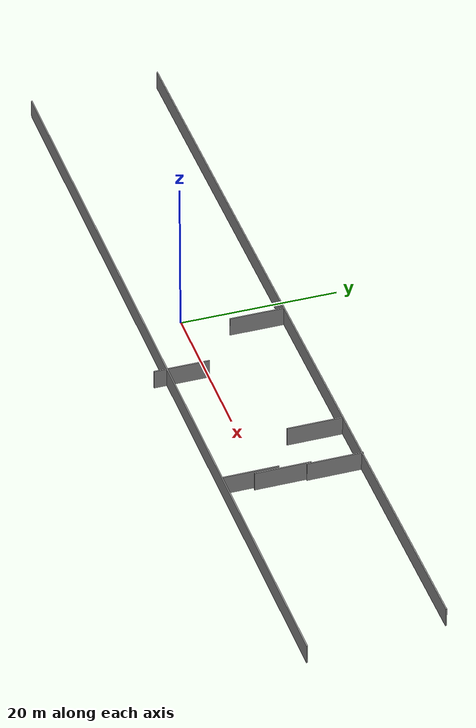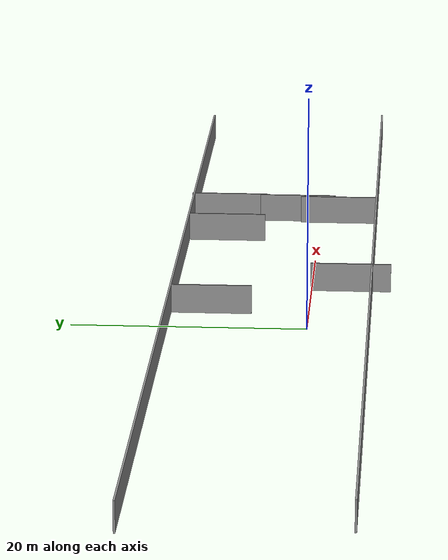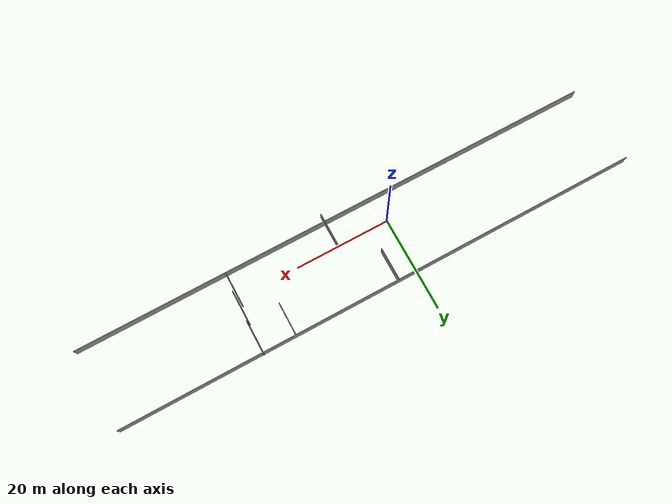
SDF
<sdf version="1.6">
 <world name="default">
  <light name="sun" type="directional">
   <cast_shadows>0</cast_shadows>
   <pose>0 0 10 0 -0 0</pose>
   <diffuse>0.8 0.8 0.8 1</diffuse>
   <specular>0.1 0.1 0.1 1</specular>
   <attenuation>
    <range>1000</range>
    <constant>0.9</constant>
    <linear>0.01</linear>
    <quadratic>0.001</quadratic>
   </attenuation>
   <direction>-0.5 0.5 -1</direction>
  </light>
  <gravity>0 0 -9.8</gravity>
  <magnetic_field>6e-06 2.3e-05 -4.2e-05</magnetic_field>
  <atmosphere type="adiabatic"/>
  <physics name="default_physics" default="0" type="ode">
   <max_step_size>0.001</max_step_size>
   <real_time_factor>1</real_time_factor>
   <real_time_update_rate>1000</real_time_update_rate>
  </physics>
  <scene><ambient>0.4 0.4 0.4 1</ambient><background>0.7 0.7 0.7 1</background><shadows>1</shadows></scene>
  <spherical_coordinates>
   <surface_model>EARTH_WGS84</surface_model>
   <latitude_deg>0</latitude_deg>
   <longitude_deg>0</longitude_deg>
   <elevation>0</elevation>
   <heading_deg>0</heading_deg>
  </spherical_coordinates>
  <model name="longwall">
   <pose>7.49303 11.865 0 0 -0 0</pose>
   <link name="Wall_0">
    <collision name="Wall_0_Collision">
     <geometry><box><size>110.75 0.15 2.5</size></box></geometry>
     <pose>0 0 1.25 0 -0 0</pose>
    </collision>
    <visual name="Wall_0_Visual">
     <pose>0 0 1.25 0 -0 0</pose>
     <geometry><box><size>110.75 0.15 2.5</size></box></geometry>
     <material>
      <script><uri>file://media/materials/scripts/gazebo.material</uri><name>Gazebo/Grey</name></script>
      <ambient>1 1 1 1</ambient>
     </material>
     <meta><layer>0</layer></meta>
    </visual>
    <pose>2e-06 0 0 0 -0 0</pose>
   </link>
   <static>1</static>
  </model>
  <model name="longwall_clone">
   <pose>8.67715 -5.22871 0 0 -0 0</pose>
   <link name="Wall_0">
    <collision name="Wall_0_Collision">
     <geometry><box><size>110.75 0.15 2.5</size></box></geometry>
     <pose>0 0 1.25 0 -0 0</pose>
    </collision>
    <visual name="Wall_0_Visual">
     <pose>0 0 1.25 0 -0 0</pose>
     <geometry><box><size>110.75 0.15 2.5</size></box></geometry>
     <material>
      <script><uri>file://media/materials/scripts/gazebo.material</uri><name>Gazebo/Grey</name></script>
      <ambient>1 1 1 1</ambient>
     </material>
     <meta><layer>0</layer></meta>
    </visual>
    <pose>2e-06 0 0 0 -0 0</pose>
   </link>
   <static>1</static>
  </model>
  <model name="wallyese">
   <pose>11.0843 -3.37863 0 0 -0 0</pose>
   <link name="Wall_2">
    <collision name="Wall_2_Collision">
     <geometry><box><size>7 0.15 2.5</size></box></geometry>
     <pose>0 0 1.25 0 -0 0</pose>
    </collision>
    <visual name="Wall_2_Visual">
     <pose>0 0 1.25 0 -0 0</pose>
     <geometry><box><size>7 0.15 2.5</size></box></geometry>
     <material>
      <script><uri>file://media/materials/scripts/gazebo.material</uri><name>Gazebo/Grey</name></script>
      <ambient>1 1 1 1</ambient>
     </material>
     <meta><layer>0</layer></meta>
    </visual>
    <pose>0 0 0 0 -0 -1.5708</pose>
   </link>
   <static>1</static>
  </model>
  <model name="wallyese_clone">
   <pose>33.2414 8.52134 0 0 -0 0</pose>
   <link name="Wall_2">
    <collision name="Wall_2_Collision">
     <geometry><box><size>7 0.15 2.5</size></box></geometry>
     <pose>0 0 1.25 0 -0 0</pose>
    </collision>
    <visual name="Wall_2_Visual">
     <pose>0 0 1.25 0 -0 0</pose>
     <geometry><box><size>7 0.15 2.5</size></box></geometry>
     <material>
      <script><uri>file://media/materials/scripts/gazebo.material</uri><name>Gazebo/Grey</name></script>
      <ambient>1 1 1 1</ambient>
     </material>
     <meta><layer>0</layer></meta>
    </visual>
    <pose>0 0 0 0 -0 -1.5708</pose>
   </link>
   <static>1</static>
  </model>
  <model name="wallyese_clone_0">
   <pose>33.0334 2.12027 0 0 -0 0</pose>
   <link name="Wall_2">
    <collision name="Wall_2_Collision">
     <geometry><box><size>7 0.15 2.5</size></box></geometry>
     <pose>0 0 1.25 0 -0 0</pose>
    </collision>
    <visual name="Wall_2_Visual">
     <pose>0 0 1.25 0 -0 0</pose>
     <geometry><box><size>7 0.15 2.5</size></box></geometry>
     <material>
      <script><uri>file://media/materials/scripts/gazebo.material</uri><name>Gazebo/Grey</name></script>
      <ambient>1 1 1 1</ambient>
     </material>
     <meta><layer>0</layer></meta>
    </visual>
    <pose>0 0 0 0 -0 -1.5708</pose>
   </link>
   <static>1</static>
  </model>
  <model name="wallyese_clone_1">
   <pose>32.6138 -1.69658 0 0 -0 0</pose>
   <link name="Wall_2">
    <collision name="Wall_2_Collision">
     <geometry><box><size>7 0.15 2.5</size></box></geometry>
     <pose>0 0 1.25 0 -0 0</pose>
    </collision>
    <visual name="Wall_2_Visual">
     <pose>0 0 1.25 0 -0 0</pose>
     <geometry><box><size>7 0.15 2.5</size></box></geometry>
     <material>
      <script><uri>file://media/materials/scripts/gazebo.material</uri><name>Gazebo/Grey</name></script>
      <ambient>1 1 1 1</ambient>
     </material>
     <meta><layer>0</layer></meta>
    </visual>
    <pose>0 0 0 0 -0 -1.5708</pose>
   </link>
   <static>1</static>
  </model>
  <model name="wallyese_clone_2">
   <pose>26.285 8.36121 0 0 -0 0</pose>
   <link name="Wall_2">
    <collision name="Wall_2_Collision">
     <geometry><box><size>7 0.15 2.5</size></box></geometry>
     <pose>0 0 1.25 0 -0 0</pose>
    </collision>
    <visual name="Wall_2_Visual">
     <pose>0 0 1.25 0 -0 0</pose>
     <geometry><box><size>7 0.15 2.5</size></box></geometry>
     <material>
      <script><uri>file://media/materials/scripts/gazebo.material</uri><name>Gazebo/Grey</name></script>
      <ambient>1 1 1 1</ambient>
     </material>
     <meta><layer>0</layer></meta>
    </visual>
    <pose>0 0 0 0 -0 -1.5708</pose>
   </link>
   <static>1</static>
  </model>
  <model name="wallyese_clone_3">
   <pose>4.07625 8.41954 0 0 -0 0</pose>
   <link name="Wall_2">
    <collision name="Wall_2_Collision">
     <geometry><box><size>7 0.15 2.5</size></box></geometry>
     <pose>0 0 1.25 0 -0 0</pose>
    </collision>
    <visual name="Wall_2_Visual">
     <pose>0 0 1.25 0 -0 0</pose>
     <geometry><box><size>7 0.15 2.5</size></box></geometry>
     <material>
      <script><uri>file://media/materials/scripts/gazebo.material</uri><name>Gazebo/Grey</name></script>
      <ambient>1 1 1 1</ambient>
     </material>
     <meta><layer>0</layer></meta>
    </visual>
    <pose>0 0 0 0 -0 -1.5708</pose>
   </link>
   <static>1</static>
  </model>
 </world>
</sdf>
